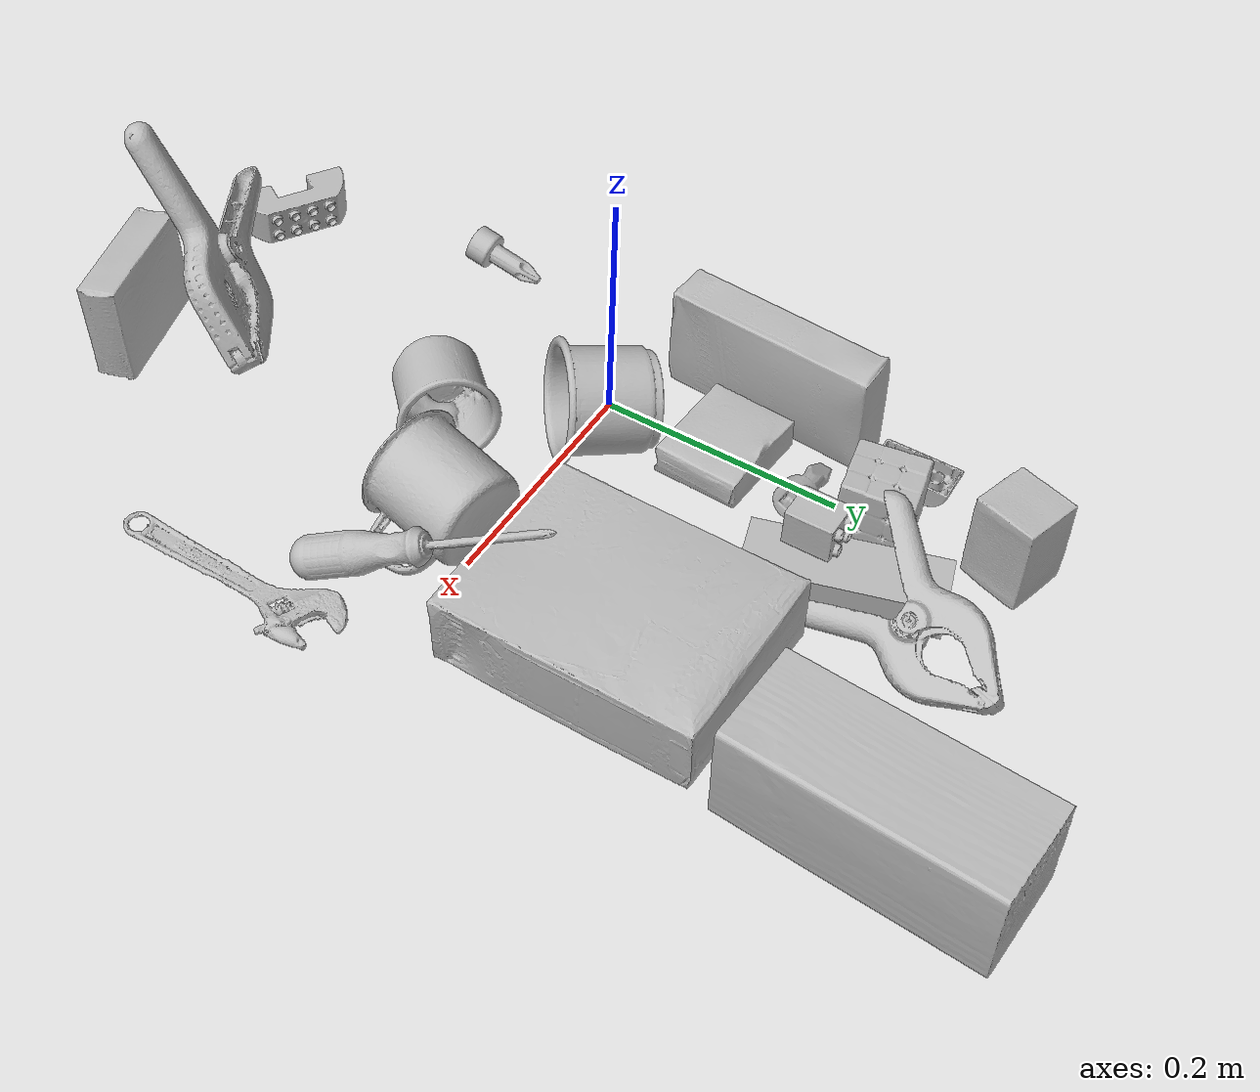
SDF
<sdf version="1.4">
  <world name="default">
    <light name="light1" type="point">
      <pose>0 0 1 0 0 0</pose>
      <diffuse>3 3 3 1</diffuse>
      <specular>3 3 3 1</specular>
    </light>
    <light name="light2" type="point">
      <pose>0 0.5 2 0 0 0</pose>
      <diffuse>1 1 1 1</diffuse>
      <specular>1 1 1 1</specular>
    </light>
    <light name="light3" type="point">
      <pose>0 0.5 2 0 0 0</pose>
      <diffuse>3 3 3 1</diffuse>
      <specular>3 3 3 1</specular>
    </light>
    <scene>
      <ambient>0.7 0.7 0.7</ambient>
    </scene>
    <model name="box21">
      <link name="link_box21">
        <collision name="default">
          <geometry>
            <mesh>
              <uri>model://cracker_box/collision_meshes/collision.obj</uri>
              <scale>1.0 1.0 1.0</scale>
            </mesh>
          </geometry>
          <surface>
            <friction>
              <ode>
                <mu>0.5</mu>
                <mu2>0.5</mu2>
              </ode>
            </friction>
          <contact>
        <ode>
            <max_vel>0</max_vel>
            <min_depth>0.0001</min_depth>
            <kp>1e8</kp>
        </ode>
    </contact></surface>
        </collision>
        <visual name="default">
          <geometry>
            <mesh>
              <uri>model://cracker_box/visual_meshes/visual.dae</uri>
              <scale>1.0 1.0 1.0</scale>
            </mesh>
          </geometry>
        </visual>
        <inertial>
          <mass>1.391977071762085</mass>
          <pose>0.0009464159375056624 0.0002543424488976598 -0.0017029533628374338 -0.000316207597302205 -0.011106489600460226 0.002546794768991959</pose>
          <inertia>
            <ixx>0.0035405685</ixx>
            <iyy>0.0058461735</iyy>
            <izz>0.008343027</izz>
            <ixy>0</ixy>
            <ixz>0</ixz>
            <iyz>0</iyz>
          </inertia>
        </inertial>
      </link>
      <pose>0.20835404098033905 0.13548795878887177 0.035531409084796906 3.137200577556104 -0.01654387553263747 1.570039727408655</pose>
    </model>
    <model name="box22">
      <link name="link_box22">
        <collision name="default">
          <geometry>
            <mesh>
              <uri>model://pudding_box/collision_meshes/collision.obj</uri>
              <scale>1.0 1.0 1.0</scale>
            </mesh>
          </geometry>
          <surface>
            <friction>
              <ode>
                <mu>0.5</mu>
                <mu2>0.5</mu2>
              </ode>
            </friction>
          <contact>
        <ode>
            <max_vel>0</max_vel>
            <min_depth>0.0001</min_depth>
            <kp>1e8</kp>
        </ode>
    </contact></surface>
        </collision>
        <visual name="default">
          <geometry>
            <mesh>
              <uri>model://pudding_box/visual_meshes/visual.dae</uri>
              <scale>1.0 1.0 1.0</scale>
            </mesh>
          </geometry>
        </visual>
        <inertial>
          <mass>0.30066633224487305</mass>
          <pose>0.0004894821904599667 0.0008067885646596551 -0.0005188827635720372 0.005213102250656644 -0.006603798267444238 0.020079828885202117</pose>
          <inertia>
            <ixx>0.0003398878</ixx>
            <iyy>0.00022867892</iyy>
            <izz>0.00050193316</izz>
            <ixy>0</ixy>
            <ixz>0</ixz>
            <iyz>0</iyz>
          </inertia>
        </inertial>
      </link>
      <pose>0.13955830037593842 -0.3669480085372925 0.045219387859106064 -0.3131928746058822 1.5456723318236463 1.545942147258745</pose>
    </model>
    <model name="box23">
      <link name="link_box23">
        <collision name="default">
          <geometry>
            <mesh>
              <uri>model://rubiks_cube/collision_meshes/collision.obj</uri>
              <scale>1.0 1.0 1.0</scale>
            </mesh>
          </geometry>
          <surface>
            <friction>
              <ode>
                <mu>0.5</mu>
                <mu2>0.5</mu2>
              </ode>
            </friction>
          <contact>
        <ode>
            <max_vel>0</max_vel>
            <min_depth>0.0001</min_depth>
            <kp>1e8</kp>
        </ode>
    </contact></surface>
        </collision>
        <visual name="default">
          <geometry>
            <mesh>
              <uri>model://rubiks_cube/visual_meshes/visual.dae</uri>
              <scale>1.0 1.0 1.0</scale>
            </mesh>
          </geometry>
        </visual>
        <inertial>
          <mass>0.26383036375045776</mass>
          <pose>2.6721041649580002e-05 5.256966323941015e-05 -7.264316082000732e-06 -0.054671492146459166 -0.0981403456898064 -0.03445706250673431</pose>
          <inertia>
            <ixx>0.000145784</ixx>
            <iyy>0.00014510413</iyy>
            <izz>0.00014699204</izz>
            <ixy>0</ixy>
            <ixz>0</ixz>
            <iyz>0</iyz>
          </inertia>
        </inertial>
      </link>
      <pose>0.0017302234191447496 0.23614934086799622 0.02970021963119507 -1.6127561621053148 -0.020651791799837293 0.18950939886908233</pose>
    </model>
    <model name="cup1">
      <link name="link_cup1">
        <collision name="default">
          <geometry>
            <mesh>
              <uri>model://i_cups/collision_meshes/collision.obj</uri>
              <scale>1.0 1.0 1.0</scale>
            </mesh>
          </geometry>
          <surface>
            <friction>
              <ode>
                <mu>0.5</mu>
                <mu2>0.5</mu2>
              </ode>
            </friction>
          <contact>
        <ode>
            <max_vel>0</max_vel>
            <min_depth>0.0001</min_depth>
            <kp>1e8</kp>
        </ode>
    </contact></surface>
        </collision>
        <visual name="default">
          <geometry>
            <mesh>
              <uri>model://i_cups/visual_meshes/visual.dae</uri>
              <scale>1.0 1.0 1.0</scale>
            </mesh>
          </geometry>
        </visual>
        <inertial>
          <mass>0.07817669957876205</mass>
          <pose>0.00011240140884183347 0.00016797371790744364 -0.0008579030982218683 -0.02898336998566683 -0.039872909189422004 -0.34590568894983</pose>
          <inertia>
            <ixx>0.000108236774</ixx>
            <iyy>0.000109190434</iyy>
            <izz>0.00012097212</izz>
            <ixy>0</ixy>
            <ixz>0</ixz>
            <iyz>0</iyz>
          </inertia>
        </inertial>
      </link>
      <pose>0.036904703825712204 0.016343750059604645 0.044801048934459686 -0.7351618851345338 1.394254497260016 -1.5725311421018473</pose>
    </model>
    <model name="cup2">
      <link name="link_cup2">
        <collision name="default">
          <geometry>
            <mesh>
              <uri>model://f_cups/collision_meshes/collision.obj</uri>
              <scale>1.0 1.0 1.0</scale>
            </mesh>
          </geometry>
          <surface>
            <friction>
              <ode>
                <mu>0.5</mu>
                <mu2>0.5</mu2>
              </ode>
            </friction>
          <contact>
        <ode>
            <max_vel>0</max_vel>
            <min_depth>0.0001</min_depth>
            <kp>1e8</kp>
        </ode>
    </contact></surface>
        </collision>
        <visual name="default">
          <geometry>
            <mesh>
              <uri>model://f_cups/visual_meshes/visual.dae</uri>
              <scale>1.0 1.0 1.0</scale>
            </mesh>
          </geometry>
        </visual>
        <inertial>
          <mass>0.06179655343294144</mass>
          <pose>-0.003171469084918499 -0.0006240077782422304 -0.0036555363330990076 0.786228783809594 -0.26079147583364887 -0.18237327348602217</pose>
          <inertia>
            <ixx>5.8090412e-05</ixx>
            <iyy>6.0937502e-05</iyy>
            <izz>6.3437656e-05</izz>
            <ixy>0</ixy>
            <ixz>0</ixz>
            <iyz>0</iyz>
          </inertia>
        </inertial>
      </link>
      <pose>0.09348711371421814 -0.09601704776287079 0.03703107684850693 1.3152918357537902 -1.178307733098826 2.5972098971683915</pose>
    </model>
    <model name="box11">
      <link name="link_box11">
        <collision name="default">
          <geometry>
            <mesh>
              <uri>model://jenga/collision_meshes/collision.obj</uri>
              <scale>1.0 1.0 1.0</scale>
            </mesh>
          </geometry>
          <surface>
            <friction>
              <ode>
                <mu>0.5</mu>
                <mu2>0.5</mu2>
              </ode>
            </friction>
          <contact>
        <ode>
            <max_vel>0</max_vel>
            <min_depth>0.0001</min_depth>
            <kp>1e8</kp>
        </ode>
    </contact></surface>
        </collision>
        <visual name="default">
          <geometry>
            <mesh>
              <uri>model://jenga/visual_meshes/visual.dae</uri>
              <scale>1.0 1.0 1.0</scale>
            </mesh>
          </geometry>
        </visual>
        <inertial>
          <mass>0.2841220796108246</mass>
          <pose>-2.5028555228345795e-07 -0.00010250010382151231 -4.0923401684267446e-05 0.0 -7.34215461761844e-07 0.0</pose>
          <inertia>
            <ixx>7.8623474e-05</ixx>
            <iyy>0.00053275056</iyy>
            <izz>0.0005687565</izz>
            <ixy>0</ixy>
            <ixz>0</ixz>
            <iyz>0</iyz>
          </inertia>
        </inertial>
      </link>
      <pose>0.07114183902740479 0.24281996488571167 0.015000008046627045 8.214731365468222e-07 1.7611340079736463e-07 1.8633569448724754</pose>
    </model>
    <model name="box12">
      <link name="link_box12">
        <collision name="default">
          <geometry>
            <mesh>
              <uri>model://wood_block/collision_meshes/collision.obj</uri>
              <scale>1.0 1.0 1.0</scale>
            </mesh>
          </geometry>
          <surface>
            <friction>
              <ode>
                <mu>0.5</mu>
                <mu2>0.5</mu2>
              </ode>
            </friction>
          <contact>
        <ode>
            <max_vel>0</max_vel>
            <min_depth>0.0001</min_depth>
            <kp>1e8</kp>
        </ode>
    </contact></surface>
        </collision>
        <visual name="default">
          <geometry>
            <mesh>
              <uri>model://wood_block/visual_meshes/visual.dae</uri>
              <scale>1.0 1.0 1.0</scale>
            </mesh>
          </geometry>
        </visual>
        <inertial>
          <mass>1.792885661125183</mass>
          <pose>-5.813315510749817e-06 -0.0005708095268346369 0.0002640858292579651 -0.0522099864925601 -0.005192695938411627 -0.006861379223067069</pose>
          <inertia>
            <ixx>0.0023991528</ixx>
            <iyy>0.007578924</iyy>
            <izz>0.007550574</izz>
            <ixy>0</ixy>
            <ixz>0</ixz>
            <iyz>0</iyz>
          </inertia>
        </inertial>
      </link>
      <pose>0.2535649836063385 0.3592369258403778 0.045700643211603165 1.5681313587092056 -0.006938654663363569 1.5142270675488354</pose>
    </model>
    <model name="box13">
      <link name="link_box13">
        <collision name="default">
          <geometry>
            <mesh>
              <uri>model://sugar_box/collision_meshes/collision.obj</uri>
              <scale>1.0 1.0 1.0</scale>
            </mesh>
          </geometry>
          <surface>
            <friction>
              <ode>
                <mu>0.5</mu>
                <mu2>0.5</mu2>
              </ode>
            </friction>
          <contact>
        <ode>
            <max_vel>0</max_vel>
            <min_depth>0.0001</min_depth>
            <kp>1e8</kp>
        </ode>
    </contact></surface>
        </collision>
        <visual name="default">
          <geometry>
            <mesh>
              <uri>model://sugar_box/visual_meshes/visual.dae</uri>
              <scale>1.0 1.0 1.0</scale>
            </mesh>
          </geometry>
        </visual>
        <inertial>
          <mass>0.8825364708900452</mass>
          <pose>0.0010343727190047503 3.8491099985549226e-05 -0.00036364805418998003 -0.0004046260965456432 0.0010506635219437153 0.002615379021860657</pose>
          <inertia>
            <ixx>0.0007353271</ixx>
            <iyy>0.0023767278</iyy>
            <izz>0.002845227</izz>
            <ixy>0</ixy>
            <ixz>0</ixz>
            <iyz>0</iyz>
          </inertia>
        </inertial>
      </link>
      <pose>-0.06428081542253494 0.11067917197942734 0.04645009711384773 1.5710193302566569 -4.001434762253268e-05 1.4988200916204846</pose>
    </model>
    <model name="box14">
      <link name="link_box14">
        <collision name="default">
          <geometry>
            <mesh>
              <uri>model://gelatin_box/collision_meshes/collision.obj</uri>
              <scale>1.0 1.0 1.0</scale>
            </mesh>
          </geometry>
          <surface>
            <friction>
              <ode>
                <mu>0.5</mu>
                <mu2>0.5</mu2>
              </ode>
            </friction>
          <contact>
        <ode>
            <max_vel>0</max_vel>
            <min_depth>0.0001</min_depth>
            <kp>1e8</kp>
        </ode>
    </contact></surface>
        </collision>
        <visual name="default">
          <geometry>
            <mesh>
              <uri>model://gelatin_box/visual_meshes/visual.dae</uri>
              <scale>1.0 1.0 1.0</scale>
            </mesh>
          </geometry>
        </visual>
        <inertial>
          <mass>0.13771659135818481</mass>
          <pose>0.0004319618456065655 0.00011156871914863586 -0.0003640321083366871 -0.0010503722043797578 -0.004755819155943452 0.016440555746729004</pose>
          <inertia>
            <ixx>9.721668e-05</ixx>
            <iyy>6.944137e-05</iyy>
            <izz>0.00014798543</izz>
            <ixy>0</ixy>
            <ixz>0</ixz>
            <iyz>0</iyz>
          </inertia>
        </inertial>
      </link>
      <pose>0.0023535729851573706 0.1049240380525589 0.015168308280408382 0.00559748436740611 -0.007304550276347814 1.500255408126724</pose>
    </model>
    <model name="cup15">
      <link name="link_cup15">
        <collision name="default">
          <geometry>
            <mesh>
              <uri>model://mug/collision_meshes/collision.obj</uri>
              <scale>1.0 1.0 1.0</scale>
            </mesh>
          </geometry>
          <surface>
            <friction>
              <ode>
                <mu>0.5</mu>
                <mu2>0.5</mu2>
              </ode>
            </friction>
          <contact>
        <ode>
            <max_vel>0</max_vel>
            <min_depth>0.0001</min_depth>
            <kp>1e8</kp>
        </ode>
    </contact></surface>
        </collision>
        <visual name="default">
          <geometry>
            <mesh>
              <uri>model://mug/visual_meshes/visual.dae</uri>
              <scale>1.0 1.0 1.0</scale>
            </mesh>
          </geometry>
        </visual>
        <inertial>
          <mass>0.09286905825138092</mass>
          <pose>0.009571668691933155 0.0008143252343870699 -0.010947328992187977 -0.12983168029791675 0.08737751579099198 0.05507277032354666</pose>
          <inertia>
            <ixx>9.2248694e-05</ixx>
            <iyy>0.00010303637</iyy>
            <izz>0.00011916295</izz>
            <ixy>0</ixy>
            <ixz>0</ixz>
            <iyz>0</iyz>
          </inertia>
        </inertial>
      </link>
      <pose>0.19155611097812653 -0.033661454916000366 0.037639420479536057 -1.4683756141733002 -0.603962943491367 2.867897065565236</pose>
    </model>
    <model name="toy1">
      <link name="link_toy1">
        <collision name="default">
          <geometry>
            <mesh>
              <uri>model://e_toy_airplane/collision_meshes/collision.obj</uri>
              <scale>1.0 1.0 1.0</scale>
            </mesh>
          </geometry>
          <surface>
            <friction>
              <ode>
                <mu>0.5</mu>
                <mu2>0.5</mu2>
              </ode>
            </friction>
          <contact>
        <ode>
            <max_vel>0</max_vel>
            <min_depth>0.0001</min_depth>
            <kp>1e8</kp>
        </ode>
    </contact></surface>
        </collision>
        <visual name="default">
          <geometry>
            <mesh>
              <uri>model://e_toy_airplane/visual_meshes/visual.dae</uri>
              <scale>1.0 1.0 1.0</scale>
            </mesh>
          </geometry>
        </visual>
        <inertial>
          <mass>0.023911256343126297</mass>
          <pose>0.00011740469199139625 -2.2482965505332686e-05 -0.011187205091118813 0.005518515901869279 0.009228280443904262 0.15041685177791278</pose>
          <inertia>
            <ixx>7.297989e-06</ixx>
            <iyy>7.223337e-06</iyy>
            <izz>2.1933329e-06</izz>
            <ixy>0</ixy>
            <ixz>0</ixz>
            <iyz>0</iyz>
          </inertia>
        </inertial>
      </link>
      <pose>-0.00019149575382471085 0.17713823914527893 0.010869697667658329 3.002709576940597 1.3102973172472239 -0.11370033103562867</pose>
    </model>
    <model name="toy2">
      <link name="link_toy2">
        <collision name="default">
          <geometry>
            <mesh>
              <uri>model://e_lego_duplo/collision_meshes/collision.obj</uri>
              <scale>1.0 1.0 1.0</scale>
            </mesh>
          </geometry>
          <surface>
            <friction>
              <ode>
                <mu>0.5</mu>
                <mu2>0.5</mu2>
              </ode>
            </friction>
          <contact>
        <ode>
            <max_vel>0</max_vel>
            <min_depth>0.0001</min_depth>
            <kp>1e8</kp>
        </ode>
    </contact></surface>
        </collision>
        <visual name="default">
          <geometry>
            <mesh>
              <uri>model://e_lego_duplo/visual_meshes/visual.dae</uri>
              <scale>1.0 1.0 1.0</scale>
            </mesh>
          </geometry>
        </visual>
        <inertial>
          <mass>0.11075761169195175</mass>
          <pose>0.00032560486579313874 0.0002348541165702045 0.0019521445501595736 -0.02256776115193108 -6.825012723321977e-05 -0.007625153470106003</pose>
          <inertia>
            <ixx>2.3096625e-05</ixx>
            <iyy>9.479449e-05</iyy>
            <izz>9.231077e-05</izz>
            <ixy>0</ixy>
            <ixz>0</ixz>
            <iyz>0</iyz>
          </inertia>
        </inertial>
      </link>
      <pose>-0.045063525438308716 -0.34844475984573364 0.01627986878156662 1.5786437083540574 -0.004775389999388509 2.5817265215944003</pose>
    </model>
    <model name="toy3">
      <link name="link_toy3">
        <collision name="default">
          <geometry>
            <mesh>
              <uri>model://foam_brick/collision_meshes/collision.obj</uri>
              <scale>1.0 1.0 1.0</scale>
            </mesh>
          </geometry>
          <surface>
            <friction>
              <ode>
                <mu>0.5</mu>
                <mu2>0.5</mu2>
              </ode>
            </friction>
          <contact>
        <ode>
            <max_vel>0</max_vel>
            <min_depth>0.0001</min_depth>
            <kp>1e8</kp>
        </ode>
    </contact></surface>
        </collision>
        <visual name="default">
          <geometry>
            <mesh>
              <uri>model://foam_brick/visual_meshes/visual.dae</uri>
              <scale>1.0 1.0 1.0</scale>
            </mesh>
          </geometry>
        </visual>
        <inertial>
          <mass>0.18736568093299866</mass>
          <pose>-0.0002522472059354186 0.0003458441933616996 -0.0002532101352699101 -0.2940186982087205 0.017274432871393446 -0.000744985669109422</pose>
          <inertia>
            <ixx>8.184482e-05</ixx>
            <iyy>0.00013066948</iyy>
            <izz>0.00013233014</izz>
            <ixy>0</ixy>
            <ixz>0</ixz>
            <iyz>0</iyz>
          </inertia>
        </inertial>
      </link>
      <pose>-0.010670755058526993 0.33741316199302673 0.038308318704366684 2.0113381373318595 1.5521832847800732 0.14735979783683864</pose>
    </model>
    <model name="toy4">
      <link name="link_toy4">
        <collision name="default">
          <geometry>
            <mesh>
              <uri>model://b_lego_duplo/collision_meshes/collision.obj</uri>
              <scale>1.0 1.0 1.0</scale>
            </mesh>
          </geometry>
          <surface>
            <friction>
              <ode>
                <mu>0.5</mu>
                <mu2>0.5</mu2>
              </ode>
            </friction>
          <contact>
        <ode>
            <max_vel>0</max_vel>
            <min_depth>0.0001</min_depth>
            <kp>1e8</kp>
        </ode>
    </contact></surface>
        </collision>
        <visual name="default">
          <geometry>
            <mesh>
              <uri>model://b_lego_duplo/visual_meshes/visual.dae</uri>
              <scale>1.0 1.0 1.0</scale>
            </mesh>
          </geometry>
        </visual>
        <inertial>
          <mass>0.025353357195854187</mass>
          <pose>-0.00011053043272113428 -9.152237907983363e-06 0.001929429010488093 -0.03749469050897604 -0.02635423063131295 0.4518929125976256</pose>
          <inertia>
            <ixx>5.188755e-06</ixx>
            <iyy>5.223636e-06</iyy>
            <izz>4.623011e-06</izz>
            <ixy>0</ixy>
            <ixz>0</ixz>
            <iyz>0</iyz>
          </inertia>
        </inertial>
      </link>
      <pose>0.06278318166732788 0.21424540877342224 0.046201229095458984 -1.579491991059883 8.74783407780513e-05 0.006511541674138367</pose>
    </model>
    <model name="toy5">
      <link name="link_toy5">
        <collision name="default">
          <geometry>
            <mesh>
              <uri>model://d_toy_airplane/collision_meshes/collision.obj</uri>
              <scale>1.0 1.0 1.0</scale>
            </mesh>
          </geometry>
          <surface>
            <friction>
              <ode>
                <mu>0.5</mu>
                <mu2>0.5</mu2>
              </ode>
            </friction>
          <contact>
        <ode>
            <max_vel>0</max_vel>
            <min_depth>0.0001</min_depth>
            <kp>1e8</kp>
        </ode>
    </contact></surface>
        </collision>
        <visual name="default">
          <geometry>
            <mesh>
              <uri>model://d_toy_airplane/visual_meshes/visual.dae</uri>
              <scale>1.0 1.0 1.0</scale>
            </mesh>
          </geometry>
        </visual>
        <inertial>
          <mass>0.012228579260408878</mass>
          <pose>9.410289931111038e-05 -5.8093195548281074e-05 -0.011728097684681416 0.00026677116185868234 0.004678984415060646 0.5194210089241819</pose>
          <inertia>
            <ixx>3.6658907e-06</ixx>
            <iyy>3.6686554e-06</iyy>
            <izz>1.1067563e-06</izz>
            <ixy>0</ixy>
            <ixz>0</ixz>
            <iyz>0</iyz>
          </inertia>
        </inertial>
      </link>
      <pose>-0.0909363403916359 -0.15912973880767822 0.011234521865844727 1.7944150525306704 -0.1970499062551871 3.0939215027504843</pose>
    </model>
    <model name="toy6">
      <link name="link_toy6">
        <collision name="default">
          <geometry>
            <mesh>
              <uri>model://a_lego_duplo/collision_meshes/collision.obj</uri>
              <scale>1.0 1.0 1.0</scale>
            </mesh>
          </geometry>
          <surface>
            <friction>
              <ode>
                <mu>0.5</mu>
                <mu2>0.5</mu2>
              </ode>
            </friction>
          <contact>
        <ode>
            <max_vel>0</max_vel>
            <min_depth>0.0001</min_depth>
            <kp>1e8</kp>
        </ode>
    </contact></surface>
        </collision>
        <visual name="default">
          <geometry>
            <mesh>
              <uri>model://a_lego_duplo/visual_meshes/visual.dae</uri>
              <scale>1.0 1.0 1.0</scale>
            </mesh>
          </geometry>
        </visual>
        <inertial>
          <mass>0.012199957855045795</mass>
          <pose>-0.00011337617615936324 0.00018517585704103112 0.0003692606114782393 -0.014116995063493705 -0.0001256559143483996 6.140869386576653e-05</pose>
          <inertia>
            <ixx>1.564132e-06</ixx>
            <iyy>3.5039989e-06</iyy>
            <izz>4.340482e-06</izz>
            <ixy>0</ixy>
            <ixz>0</ixz>
            <iyz>0</iyz>
          </inertia>
        </inertial>
      </link>
      <pose>-0.04900077357888222 0.24185863137245178 0.012124795466661453 -3.1412826796306215 -0.015582511379595364 -1.5562099484283034</pose>
    </model>
    <model name="hardware1">
      <link name="link_hardware1">
        <collision name="default">
          <geometry>
            <mesh>
              <uri>model://phillips_screwdriver/collision_meshes/collision.obj</uri>
              <scale>1.0 1.0 1.0</scale>
            </mesh>
          </geometry>
          <surface>
            <friction>
              <ode>
                <mu>0.5</mu>
                <mu2>0.5</mu2>
              </ode>
            </friction>
          <contact>
        <ode>
            <max_vel>0</max_vel>
            <min_depth>0.0001</min_depth>
            <kp>1e8</kp>
        </ode>
    </contact></surface>
        </collision>
        <visual name="default">
          <geometry>
            <mesh>
              <uri>model://phillips_screwdriver/visual_meshes/visual.dae</uri>
              <scale>1.0 1.0 1.0</scale>
            </mesh>
          </geometry>
        </visual>
        <inertial>
          <mass>0.06495495140552521</mass>
          <pose>-0.04777183011174202 0.0010362302418798208 -0.00045555501128546894 -0.1571888451297522 0.005850998841919991 -0.0021567342335393844</pose>
          <inertia>
            <ixx>7.63154e-06</ixx>
            <iyy>9.568614e-05</iyy>
            <izz>9.576745e-05</izz>
            <ixy>0</ixy>
            <ixz>0</ixz>
            <iyz>0</iyz>
          </inertia>
        </inertial>
      </link>
      <pose>0.2405911535024643 -0.013222374022006989 0.05210442468523979 -2.5192570191867563 -0.407570964253346 1.89021086067475</pose>
    </model>
    <model name="hardware2">
      <link name="link_hardware2">
        <collision name="default">
          <geometry>
            <mesh>
              <uri>model://extra_large_clamp/collision_meshes/collision.obj</uri>
              <scale>1.0 1.0 1.0</scale>
            </mesh>
          </geometry>
          <surface>
            <friction>
              <ode>
                <mu>0.5</mu>
                <mu2>0.5</mu2>
              </ode>
            </friction>
          <contact>
        <ode>
            <max_vel>0</max_vel>
            <min_depth>0.0001</min_depth>
            <kp>1e8</kp>
        </ode>
    </contact></surface>
        </collision>
        <visual name="default">
          <geometry>
            <mesh>
              <uri>model://extra_large_clamp/visual_meshes/visual.dae</uri>
              <scale>1.0 1.0 1.0</scale>
            </mesh>
          </geometry>
        </visual>
        <inertial>
          <mass>0.19384004175662994</mass>
          <pose>0.003232018556445837 -7.61538467486389e-05 0.00031721554114483297 0.013786997874205318 -0.000506684650300538 -0.0008936209831217155</pose>
          <inertia>
            <ixx>0.00029460518</ixx>
            <iyy>0.00050721905</iyy>
            <izz>0.0007749263</izz>
            <ixy>0</ixy>
            <ixz>0</ixz>
            <iyz>0</iyz>
          </inertia>
        </inertial>
      </link>
      <pose>0.07668714225292206 -0.3291333317756653 0.05740010738372803 2.21892765627927 0.4779937052213029 0.8994392250560295</pose>
    </model>
    <model name="hardware3">
      <link name="link_hardware3">
        <collision name="default">
          <geometry>
            <mesh>
              <uri>model://large_clamp/collision_meshes/collision.obj</uri>
              <scale>1.0 1.0 1.0</scale>
            </mesh>
          </geometry>
          <surface>
            <friction>
              <ode>
                <mu>0.5</mu>
                <mu2>0.5</mu2>
              </ode>
            </friction>
          <contact>
        <ode>
            <max_vel>0</max_vel>
            <min_depth>0.0001</min_depth>
            <kp>1e8</kp>
        </ode>
    </contact></surface>
        </collision>
        <visual name="default">
          <geometry>
            <mesh>
              <uri>model://large_clamp/visual_meshes/visual.dae</uri>
              <scale>1.0 1.0 1.0</scale>
            </mesh>
          </geometry>
        </visual>
        <inertial>
          <mass>0.09168914705514908</mass>
          <pose>0.006369357462972403 0.0003585686208680272 -0.0001839803735492751 -0.0021330784539622108 0.00967158945845961 0.026633182273159455</pose>
          <inertia>
            <ixx>8.0894904e-05</ixx>
            <iyy>0.00015362375</iyy>
            <izz>0.00022223631</izz>
            <ixy>0</ixy>
            <ixz>0</ixz>
            <iyz>0</iyz>
          </inertia>
        </inertial>
      </link>
      <pose>0.09891218692064285 0.30732911825180054 0.03310787305235863 0.597169190852779 0.12737921445360026 1.2133877230073125</pose>
    </model>
    <model name="hardware4">
      <link name="link_hardware4">
        <collision name="default">
          <geometry>
            <mesh>
              <uri>model://adjustable_wrench/collision_meshes/collision.obj</uri>
              <scale>1.0 1.0 1.0</scale>
            </mesh>
          </geometry>
          <surface>
            <friction>
              <ode>
                <mu>0.5</mu>
                <mu2>0.5</mu2>
              </ode>
            </friction>
          <contact>
        <ode>
            <max_vel>0</max_vel>
            <min_depth>0.0001</min_depth>
            <kp>1e8</kp>
        </ode>
    </contact></surface>
        </collision>
        <visual name="default">
          <geometry>
            <mesh>
              <uri>model://adjustable_wrench/visual_meshes/visual.dae</uri>
              <scale>1.0 1.0 1.0</scale>
            </mesh>
          </geometry>
        </visual>
        <inertial>
          <mass>0.03454793244600296</mass>
          <pose>0.03740980476140976 -0.0028968879487365484 -0.001114922808483243 -0.01447336202596381 0.006656025927011416 -0.010954184309206349</pose>
          <inertia>
            <ixx>7.0707333e-06</ixx>
            <iyy>8.275469e-05</iyy>
            <izz>8.944984e-05</izz>
            <ixy>0</ixy>
            <ixz>0</ixz>
            <iyz>0</iyz>
          </inertia>
        </inertial>
      </link>
      <pose>0.30933499336242676 -0.13353891670703888 0.004628567956387997 3.098356390893067 -0.016036015491779493 1.5532455536630811</pose>
    </model>
  <physics type="ode">
      <max_contacts>50</max_contacts>
      <ode>
        <solver>
          <type>quick</type>
          <iters>75</iters>
        </solver>
        <constraints>
          <contact_max_correcting_vel>0</contact_max_correcting_vel>
          <contact_surface_layer>0</contact_surface_layer>
        </constraints>
      </ode>
    </physics></world>
</sdf>
